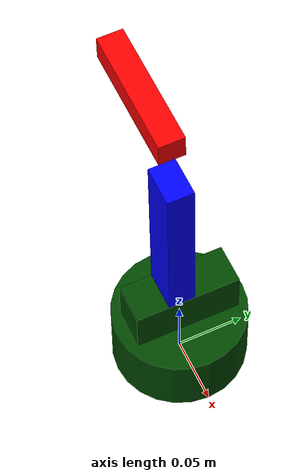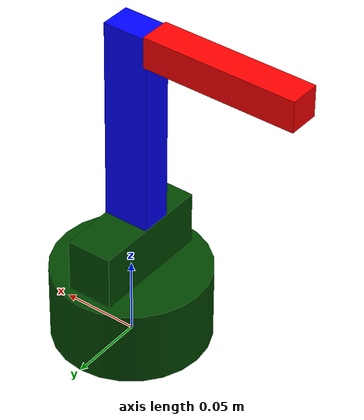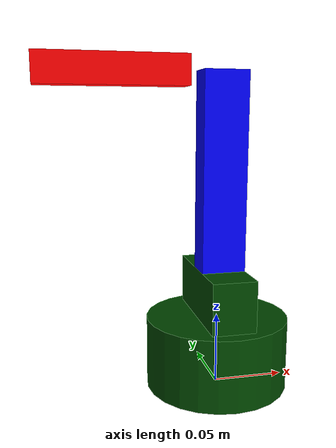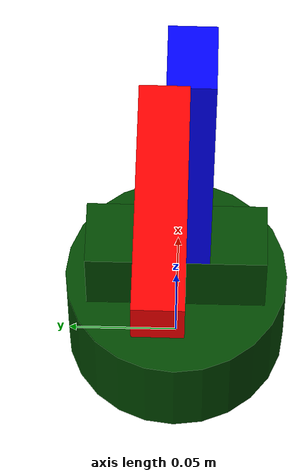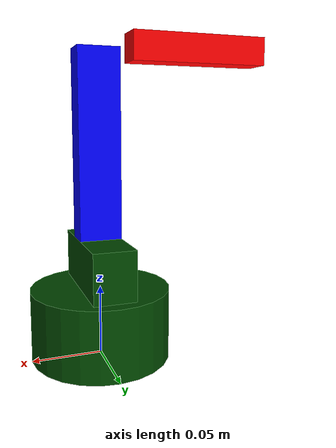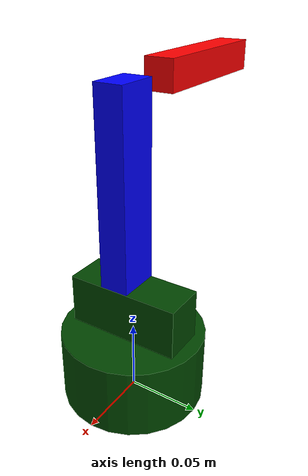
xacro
<?xml version="1.0"?>
<robot xmlns:xacro="http://www.ros.org/wiki/xacro" name="eezybotarm_mk2">
    <!-- Materials -->
    <material name="green">
        <color rgba="0 0.275 0 1"/>
    </material>
    <material name="blue">
        <color rgba="0 0 1 1"/>
    </material>
    <material name="red">
        <color rgba="1 0 0 1"/>
    </material><!-- BASE LINK -->
<link name="base_link">
    <visual>
        <origin xyz="0 0 0.025" rpy="0 0 0"/>
        <geometry>
            <cylinder radius="0.05" length="0.05"/>
        </geometry>
        <material name="green"/>
    </visual>
    <collision>
        <origin xyz="0 0 0.025" rpy="0 0 0"/>
        <geometry>
            <cylinder radius="0.05" length="0.05"/>
        </geometry>
    </collision>
</link>

<!-- JOINT 1 (Base rotation) -->
<joint name="joint_1" type="revolute">
    <origin xyz="0 0 0.05" rpy="0 0 0"/>
    <parent link="base_link"/>
    <child link="link_1"/>
    <axis xyz="0 0 1"/>
    <limit effort="100" velocity="1.0" lower="-0.7854" upper="0.7854"/>
    <!-- [-45,45] degrees -->
</joint>

<!-- LINK 1 (First arm segment) -->
<link name="link_1">
    <visual>
        <origin xyz="0 0 0.0175" rpy="0 0 0"/>
        <geometry>
            <box size="0.03 0.08 0.035"/>
        </geometry>
        <material name="green"/>
    </visual>
    <collision>
        <origin xyz="0 0 0.0175" rpy="0 0 0"/>
        <geometry>
            <box size="0.03 0.08 0.035"/>
        </geometry>
    </collision>
</link>

<!-- JOINT 2 (Shoulder) -->
<joint name="joint_2" type="revolute">
    <origin xyz="0 -0.005 0.035" rpy="1.578 0 0"/>
    <parent link="link_1"/>
    <child link="link_2"/>
    <axis xyz="0 0 -1"/>
    <limit effort="100" velocity="1.0" lower="-0.279253" upper="1.01229"/>
    <!-- [-35,55] degrees -->
</joint>

<!-- LINK 2 (Second arm segment) -->
<link name="link_2">
    <visual>
        <origin xyz="0 0.0665 0" rpy="0 0 0"/>
        <geometry>
            <box size="0.03 0.133 0.02"/>
        </geometry>
        <material name="blue"/>
    </visual>
    <collision>
        <origin xyz="0 0.0665 0" rpy="0 0 0"/>
        <geometry>
            <box size="0.03 0.133 0.02"/>
        </geometry>
    </collision>
</link>

<!-- JOINT 3 (Elbow) -->
<joint name="joint_3" type="revolute">
    <origin xyz="-0.021 0.133 -0.0105" rpy="0 0 1.5708"/>
    <parent link="link_2"/>
    <child link="link_3"/>
    <axis xyz="0 0 1"/>
    <limit effort="100" velocity="1.0" lower="0" upper="1.22173"/>
    <!-- [-70,20] degrees -->
</joint>

<!-- LINK 3 (End effector) -->
<link name="link_3">
    <visual>
        <origin xyz="0 0.05 0" rpy="0 0 0"/>
        <geometry>
            <box size="0.02 0.1 0.02"/>
        </geometry>
        <material name="red"/>
    </visual>
    <collision>
        <origin xyz="0 0.05 0" rpy="0 0 0"/>
        <geometry>
            <box size="0.02 0.1 0.02"/>
        </geometry>
    </collision>
</link>

<!-- Add transmission elements for ros2_control -->
<transmission name="joint_1_trans">
    <type>transmission_interface/SimpleTransmission</type>
    <joint name="joint_1">
        <hardwareInterface>hardware_interface/PositionJointInterface</hardwareInterface>
    </joint>
    <actuator name="joint_1_motor">
        <mechanicalReduction>1</mechanicalReduction>
    </actuator>
</transmission>

<transmission name="joint_2_trans">
    <type>transmission_interface/SimpleTransmission</type>
    <joint name="joint_2">
        <hardwareInterface>hardware_interface/PositionJointInterface</hardwareInterface>
    </joint>
    <actuator name="joint_2_motor">
        <mechanicalReduction>1</mechanicalReduction>
    </actuator>
</transmission>

<transmission name="joint_3_trans">
    <type>transmission_interface/SimpleTransmission</type>
    <joint name="joint_3">
        <hardwareInterface>hardware_interface/PositionJointInterface</hardwareInterface>
    </joint>
    <actuator name="joint_3_motor">
        <mechanicalReduction>1</mechanicalReduction>
    </actuator>
</transmission>
</robot>
